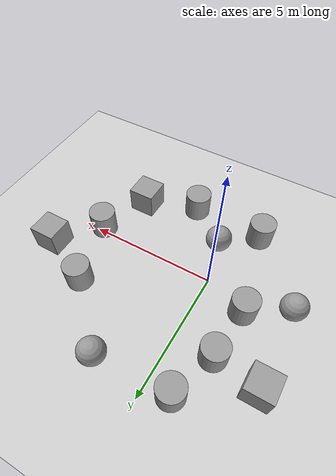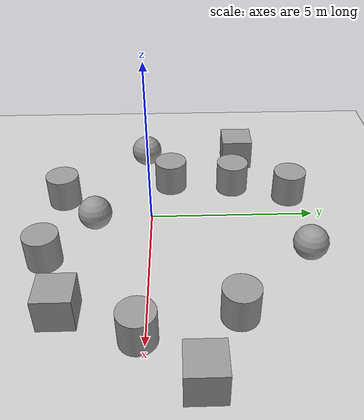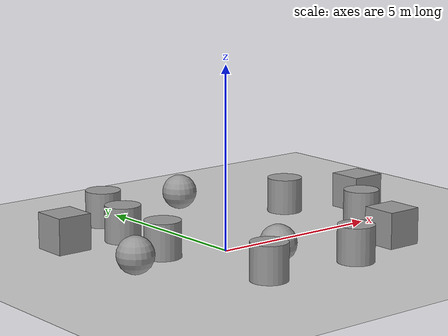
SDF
<sdf version="1.7">
 <world name="default">
  <light name="sun" type="directional">
   <pose>0 0 10 0 -0 0</pose>
   <diffuse>0.8 0.8 0.8 1</diffuse>
   <specular>0.2 0.2 0.2 1</specular>
   <attenuation>
    <range>1000</range>
    <constant>0.9</constant>
    <linear>0.01</linear>
    <quadratic>0.001</quadratic>
   </attenuation>
   <direction>-0.5 0.1 -0.9</direction>
   <spot><inner_angle>0</inner_angle><outer_angle>0</outer_angle><falloff>0</falloff></spot>
  </light>
  <model name="ground_plane">
   <static>1</static>
   <link name="link">
    <collision name="collision">
     <geometry><plane><normal>0 0 1</normal><size>100 100</size></plane></geometry>
     <surface><friction><ode><mu>100</mu><mu2>50</mu2></ode></friction></surface>
    </collision>
    <visual name="visual">
     <cast_shadows>0</cast_shadows>
     <geometry><plane><normal>0 0 1</normal><size>100 100</size></plane></geometry>
     <material>
      <script><uri>file://media/materials/scripts/gazebo.material</uri><name>Gazebo/Grey</name></script>
     </material>
    </visual>
   </link>
  </model>
  <gravity>0 0 -9.8</gravity>
  <magnetic_field>6e-06 2.3e-05 -4.2e-05</magnetic_field>
  <atmosphere type="adiabatic"/>
  <physics type="ode">
   <max_step_size>0.001</max_step_size>
   <real_time_factor>1</real_time_factor>
   <real_time_update_rate>1000</real_time_update_rate>
  </physics>
  <scene><ambient>0.4 0.4 0.4 1</ambient><background>0.7 0.7 0.7 1</background><shadows>1</shadows></scene>
  <audio><device>default</device></audio>
  <spherical_coordinates>
   <surface_model>EARTH_WGS84</surface_model>
   <latitude_deg>0</latitude_deg>
   <longitude_deg>0</longitude_deg>
   <elevation>0</elevation>
   <heading_deg>0</heading_deg>
  </spherical_coordinates>
  <model name="unit_sphere">
   <pose>1.94349 4.53261 0.5 0 -0 0</pose>
   <link name="link">
    <inertial>
     <mass>1</mass>
     <inertia><ixx>0.1</ixx><ixy>0</ixy><ixz>0</ixz><iyy>0.1</iyy><iyz>0</iyz><izz>0.1</izz></inertia>
    </inertial>
    <collision name="collision"><geometry><sphere><radius>0.5</radius></sphere></geometry></collision>
    <visual name="visual">
     <geometry><sphere><radius>0.5</radius></sphere></geometry>
     <material>
      <script><name>Gazebo/Grey</name><uri>file://media/materials/scripts/gazebo.material</uri></script>
     </material>
    </visual>
   </link>
  </model>
  <model name="unit_cylinder">
   <pose>4.14057 2.35418 0.499998 3e-06 -4e-06 0</pose>
   <link name="link">
    <inertial>
     <mass>1</mass>
     <inertia><ixx>0.145833</ixx><ixy>0</ixy><ixz>0</ixz><iyy>0.145833</iyy><iyz>0</iyz><izz>0.125</izz></inertia>
    </inertial>
    <collision name="collision">
     <geometry><cylinder><radius>0.5</radius><length>1</length></cylinder></geometry>
    </collision>
    <visual name="visual">
     <geometry><cylinder><radius>0.5</radius><length>1</length></cylinder></geometry>
     <material>
      <script><name>Gazebo/Grey</name><uri>file://media/materials/scripts/gazebo.material</uri></script>
     </material>
    </visual>
   </link>
  </model>
  <model name="unit_cylinder_0">
   <pose>4.80439 -0.167188 0.499998 3e-06 -4e-06 0</pose>
   <link name="link">
    <inertial>
     <mass>1</mass>
     <inertia><ixx>0.145833</ixx><ixy>0</ixy><ixz>0</ixz><iyy>0.145833</iyy><iyz>0</iyz><izz>0.125</izz></inertia>
    </inertial>
    <collision name="collision">
     <geometry><cylinder><radius>0.5</radius><length>1</length></cylinder></geometry>
    </collision>
    <visual name="visual">
     <geometry><cylinder><radius>0.5</radius><length>1</length></cylinder></geometry>
     <material>
      <script><name>Gazebo/Grey</name><uri>file://media/materials/scripts/gazebo.material</uri></script>
     </material>
    </visual>
   </link>
  </model>
  <model name="unit_box">
   <pose>6.12335 1.38697 0.499995 -1e-05 -0 -0</pose>
   <link name="link">
    <inertial>
     <mass>1</mass>
     <inertia>
      <ixx>0.166667</ixx>
      <ixy>0</ixy>
      <ixz>0</ixz>
      <iyy>0.166667</iyy>
      <iyz>0</iyz>
      <izz>0.166667</izz>
     </inertia>
    </inertial>
    <collision name="collision"><geometry><box><size>1 1 1</size></box></geometry></collision>
    <visual name="visual">
     <geometry><box><size>1 1 1</size></box></geometry>
     <material>
      <script><name>Gazebo/Grey</name><uri>file://media/materials/scripts/gazebo.material</uri></script>
     </material>
    </visual>
   </link>
  </model>
  <model name="unit_box_0">
   <pose>3.98807 -2.19113 0.499995 0 1e-05 0</pose>
   <link name="link">
    <inertial>
     <mass>1</mass>
     <inertia>
      <ixx>0.166667</ixx>
      <ixy>0</ixy>
      <ixz>0</ixz>
      <iyy>0.166667</iyy>
      <iyz>0</iyz>
      <izz>0.166667</izz>
     </inertia>
    </inertial>
    <collision name="collision"><geometry><box><size>1 1 1</size></box></geometry></collision>
    <visual name="visual">
     <geometry><box><size>1 1 1</size></box></geometry>
     <material>
      <script><name>Gazebo/Grey</name><uri>file://media/materials/scripts/gazebo.material</uri></script>
     </material>
    </visual>
   </link>
  </model>
  <model name="unit_cylinder_1">
   <pose>1.97343 -2.91582 0.499998 3e-06 -4e-06 0</pose>
   <link name="link">
    <inertial>
     <mass>1</mass>
     <inertia><ixx>0.145833</ixx><ixy>0</ixy><ixz>0</ixz><iyy>0.145833</iyy><iyz>0</iyz><izz>0.125</izz></inertia>
    </inertial>
    <collision name="collision">
     <geometry><cylinder><radius>0.5</radius><length>1</length></cylinder></geometry>
    </collision>
    <visual name="visual">
     <geometry><cylinder><radius>0.5</radius><length>1</length></cylinder></geometry>
     <material>
      <script><name>Gazebo/Grey</name><uri>file://media/materials/scripts/gazebo.material</uri></script>
     </material>
    </visual>
   </link>
  </model>
  <model name="unit_cylinder_2">
   <pose>-0.873078 -2.77663 0.499998 3e-06 4e-06 -0</pose>
   <link name="link">
    <inertial>
     <mass>1</mass>
     <inertia><ixx>0.145833</ixx><ixy>0</ixy><ixz>0</ixz><iyy>0.145833</iyy><iyz>0</iyz><izz>0.125</izz></inertia>
    </inertial>
    <collision name="collision">
     <geometry><cylinder><radius>0.5</radius><length>1</length></cylinder></geometry>
    </collision>
    <visual name="visual">
     <geometry><cylinder><radius>0.5</radius><length>1</length></cylinder></geometry>
     <material>
      <script><name>Gazebo/Grey</name><uri>file://media/materials/scripts/gazebo.material</uri></script>
     </material>
    </visual>
   </link>
  </model>
  <model name="unit_sphere_0">
   <pose>-3.12792 -0.23574 0.5 0 -0 0</pose>
   <link name="link">
    <inertial>
     <mass>1</mass>
     <inertia><ixx>0.1</ixx><ixy>0</ixy><ixz>0</ixz><iyy>0.1</iyy><iyz>0</iyz><izz>0.1</izz></inertia>
    </inertial>
    <collision name="collision"><geometry><sphere><radius>0.5</radius></sphere></geometry></collision>
    <visual name="visual">
     <geometry><sphere><radius>0.5</radius></sphere></geometry>
     <material>
      <script><name>Gazebo/Grey</name><uri>file://media/materials/scripts/gazebo.material</uri></script>
     </material>
    </visual>
   </link>
  </model>
  <model name="unit_box_1">
   <pose>-3.17829 2.88365 0.499995 0 1e-05 0</pose>
   <link name="link">
    <inertial>
     <mass>1</mass>
     <inertia>
      <ixx>0.166667</ixx>
      <ixy>0</ixy>
      <ixz>0</ixz>
      <iyy>0.166667</iyy>
      <iyz>0</iyz>
      <izz>0.166667</izz>
     </inertia>
    </inertial>
    <collision name="collision"><geometry><box><size>1 1 1</size></box></geometry></collision>
    <visual name="visual">
     <geometry><box><size>1 1 1</size></box></geometry>
     <material>
      <script><name>Gazebo/Grey</name><uri>file://media/materials/scripts/gazebo.material</uri></script>
     </material>
    </visual>
   </link>
  </model>
  <model name="unit_cylinder_3">
   <pose>-0.890656 4.37515 0.499993 -3e-06 -4e-06 -0</pose>
   <link name="link">
    <inertial>
     <mass>1</mass>
     <inertia><ixx>0.145833</ixx><ixy>0</ixy><ixz>0</ixz><iyy>0.145833</iyy><iyz>0</iyz><izz>0.125</izz></inertia>
    </inertial>
    <collision name="collision">
     <geometry><cylinder><radius>0.5</radius><length>1</length></cylinder></geometry>
    </collision>
    <visual name="visual">
     <geometry><cylinder><radius>0.5</radius><length>1</length></cylinder></geometry>
     <material>
      <script><name>Gazebo/Grey</name><uri>file://media/materials/scripts/gazebo.material</uri></script>
     </material>
    </visual>
   </link>
  </model>
  <model name="unit_cylinder_4">
   <pose>-1.47358 2.61181 0.499997 3e-06 4e-06 -0</pose>
   <link name="link">
    <inertial>
     <mass>1</mass>
     <inertia><ixx>0.145833</ixx><ixy>0</ixy><ixz>0</ixz><iyy>0.145833</iyy><iyz>0</iyz><izz>0.125</izz></inertia>
    </inertial>
    <collision name="collision">
     <geometry><cylinder><radius>0.5</radius><length>1</length></cylinder></geometry>
    </collision>
    <visual name="visual">
     <geometry><cylinder><radius>0.5</radius><length>1</length></cylinder></geometry>
     <material>
      <script><name>Gazebo/Grey</name><uri>file://media/materials/scripts/gazebo.material</uri></script>
     </material>
    </visual>
   </link>
  </model>
  <model name="unit_cylinder_5">
   <pose>-1.62847 0.607567 0.499993 -3e-06 -4e-06 -0</pose>
   <link name="link">
    <inertial>
     <mass>1</mass>
     <inertia><ixx>0.145833</ixx><ixy>0</ixy><ixz>0</ixz><iyy>0.145833</iyy><iyz>0</iyz><izz>0.125</izz></inertia>
    </inertial>
    <collision name="collision">
     <geometry><cylinder><radius>0.5</radius><length>1</length></cylinder></geometry>
    </collision>
    <visual name="visual">
     <geometry><cylinder><radius>0.5</radius><length>1</length></cylinder></geometry>
     <material>
      <script><name>Gazebo/Grey</name><uri>file://media/materials/scripts/gazebo.material</uri></script>
     </material>
    </visual>
   </link>
  </model>
  <model name="unit_sphere_1">
   <pose>0.407695 -1.64653 0.5 0 -0 0</pose>
   <link name="link">
    <inertial>
     <mass>1</mass>
     <inertia><ixx>0.1</ixx><ixy>0</ixy><ixz>0</ixz><iyy>0.1</iyy><iyz>0</iyz><izz>0.1</izz></inertia>
    </inertial>
    <collision name="collision"><geometry><sphere><radius>0.5</radius></sphere></geometry></collision>
    <visual name="visual">
     <geometry><sphere><radius>0.5</radius></sphere></geometry>
     <material>
      <script><name>Gazebo/Grey</name><uri>file://media/materials/scripts/gazebo.material</uri></script>
     </material>
    </visual>
   </link>
  </model>
 </world>
</sdf>
